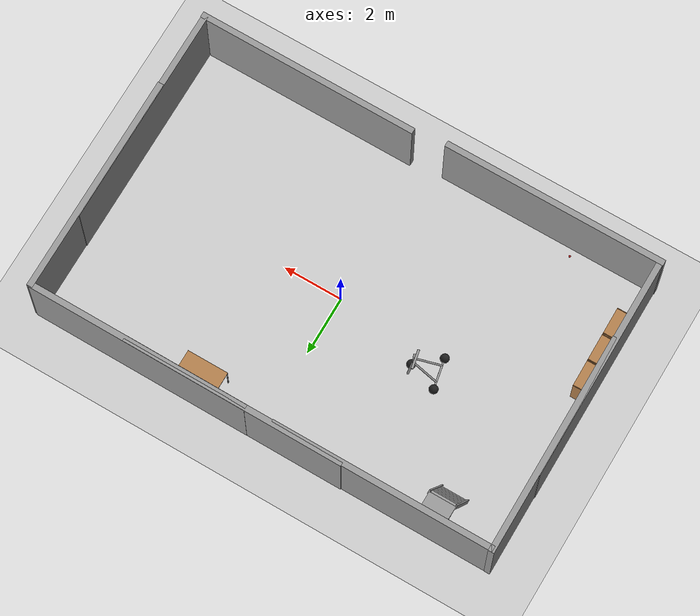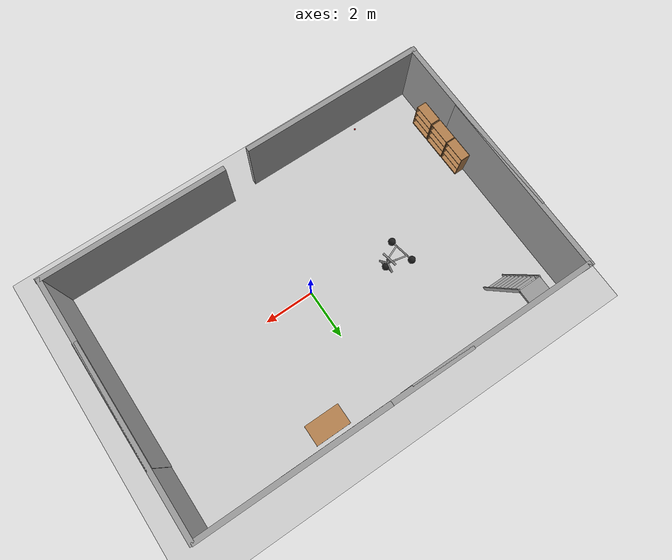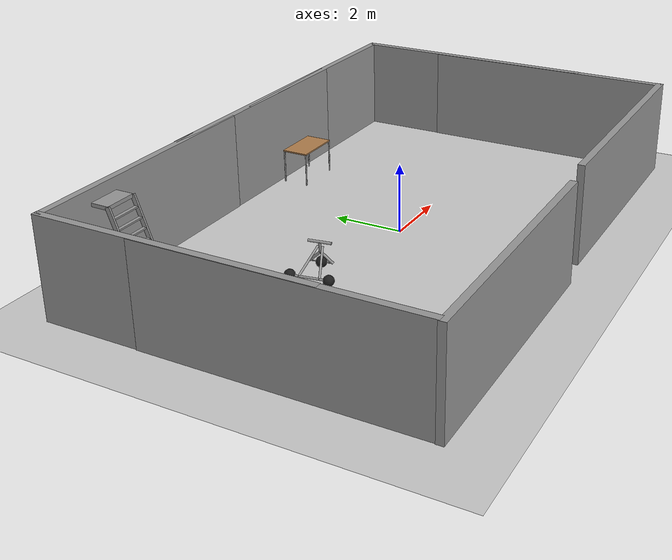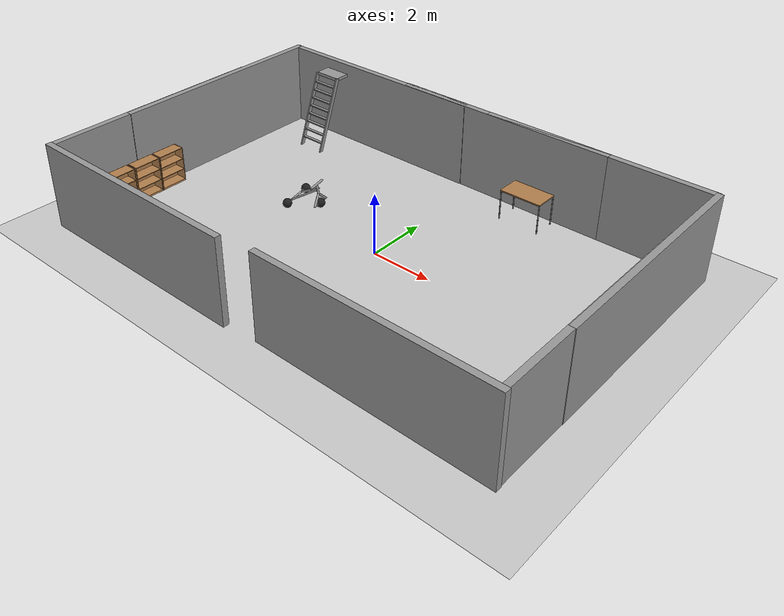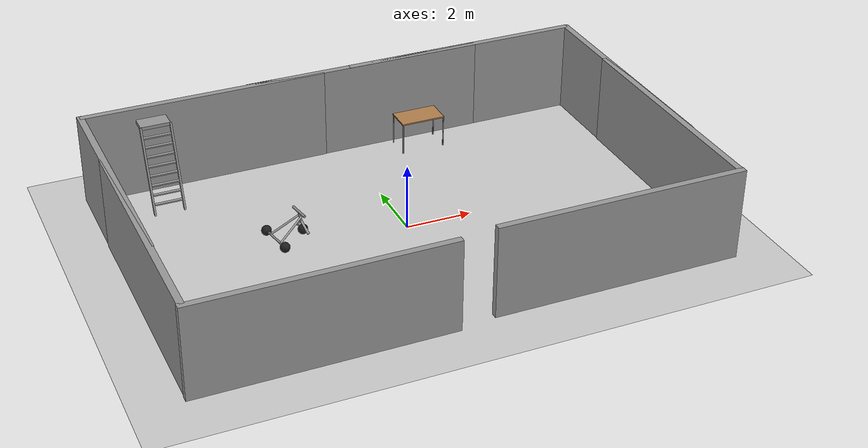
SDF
<sdf version="1.6">
 <world name="default">
  <light name="sun" type="directional">
   <pose>0 0 10 0 -0 0</pose>
   <diffuse>0.8 0.8 0.8 1</diffuse>
   <specular>0.1 0.1 0.1 1</specular>
   <attenuation>
    <range>1000</range>
    <constant>0.9</constant>
    <linear>0.01</linear>
    <quadratic>0.001</quadratic>
   </attenuation>
   <direction>-0.5 0.5 -1</direction>
  </light>
  <model name="ground_plane">
   <static>1</static>
   <link name="link">
    <collision name="collision">
     <geometry><plane><normal>0 0 1</normal><size>100 100</size></plane></geometry>
     <surface><friction><ode><mu>100</mu><mu2>50</mu2></ode></friction></surface>
    </collision>
    <visual name="visual">
     <cast_shadows>0</cast_shadows>
     <geometry><plane><normal>0 0 1</normal><size>100 100</size></plane></geometry>
     <material>
      <script><uri>file://media/materials/scripts/gazebo.material</uri><name>Gazebo/Grey</name></script>
     </material>
    </visual>
   </link>
  </model>
  <gravity>0 0 -9.8</gravity>
  <magnetic_field>6e-06 2.3e-05 -4.2e-05</magnetic_field>
  <atmosphere type="adiabatic"/>
  <physics name="default_physics" default="0" type="ode">
   <max_step_size>0.001</max_step_size>
   <real_time_factor>1</real_time_factor>
   <real_time_update_rate>1000</real_time_update_rate>
  </physics>
  <scene><ambient>0.4 0.4 0.4 1</ambient><background>0.7 0.7 0.7 1</background><shadows>1</shadows></scene>
  <spherical_coordinates>
   <surface_model>EARTH_WGS84</surface_model>
   <latitude_deg>0</latitude_deg>
   <longitude_deg>0</longitude_deg>
   <elevation>0</elevation>
   <heading_deg>0</heading_deg>
  </spherical_coordinates>
  <model name="bookshelf">
   <static>1</static>
   <link name="link">
    <inertial><mass>1</mass></inertial>
    <collision name="back">
     <pose>0 0.005 0.6 0 -0 0</pose>
     <geometry><box><size>0.9 0.01 1.2</size></box></geometry>
    </collision>
    <visual name="visual1">
     <pose>0 0.005 0.6 0 -0 0</pose>
     <geometry><box><size>0.9 0.01 1.2</size></box></geometry>
     <material>
      <script><uri>file://media/materials/scripts/gazebo.material</uri><name>Gazebo/Wood</name></script>
     </material>
    </visual>
    <collision name="left_side">
     <pose>0.45 -0.195 0.6 0 -0 0</pose>
     <geometry><box><size>0.02 0.4 1.2</size></box></geometry>
    </collision>
    <visual name="visual2">
     <pose>0.45 -0.195 0.6 0 -0 0</pose>
     <geometry><box><size>0.02 0.4 1.2</size></box></geometry>
     <material>
      <script><uri>file://media/materials/scripts/gazebo.material</uri><name>Gazebo/Wood</name></script>
     </material>
    </visual>
    <collision name="right_side">
     <pose>-0.45 -0.195 0.6 0 -0 0</pose>
     <geometry><box><size>0.02 0.4 1.2</size></box></geometry>
    </collision>
    <visual name="visual3">
     <pose>-0.45 -0.195 0.6 0 -0 0</pose>
     <geometry><box><size>0.02 0.4 1.2</size></box></geometry>
     <material>
      <script><uri>file://media/materials/scripts/gazebo.material</uri><name>Gazebo/Wood</name></script>
     </material>
    </visual>
    <collision name="bottom">
     <pose>0 -0.195 0.03 0 -0 0</pose>
     <geometry><box><size>0.88 0.4 0.06</size></box></geometry>
    </collision>
    <visual name="visual4">
     <pose>0 -0.195 0.03 0 -0 0</pose>
     <geometry><box><size>0.88 0.4 0.06</size></box></geometry>
     <material>
      <script><uri>file://media/materials/scripts/gazebo.material</uri><name>Gazebo/Wood</name></script>
     </material>
    </visual>
    <collision name="top">
     <pose>0 -0.195 1.19 0 -0 0</pose>
     <geometry><box><size>0.88 0.4 0.02</size></box></geometry>
    </collision>
    <visual name="visual5">
     <pose>0 -0.195 1.19 0 -0 0</pose>
     <geometry><box><size>0.88 0.4 0.02</size></box></geometry>
     <material>
      <script><uri>file://media/materials/scripts/gazebo.material</uri><name>Gazebo/Wood</name></script>
     </material>
    </visual>
    <collision name="low_shelf">
     <pose>0 -0.195 0.43 0 -0 0</pose>
     <geometry><box><size>0.88 0.4 0.02</size></box></geometry>
    </collision>
    <visual name="visual6">
     <pose>0 -0.195 0.43 0 -0 0</pose>
     <geometry><box><size>0.88 0.4 0.02</size></box></geometry>
     <material>
      <script><uri>file://media/materials/scripts/gazebo.material</uri><name>Gazebo/Wood</name></script>
     </material>
    </visual>
    <collision name="high_shelf">
     <pose>0 -0.195 0.8 0 -0 0</pose>
     <geometry><box><size>0.88 0.4 0.02</size></box></geometry>
    </collision>
    <visual name="visual7">
     <pose>0 -0.195 0.8 0 -0 0</pose>
     <geometry><box><size>0.88 0.4 0.02</size></box></geometry>
     <material>
      <script><uri>file://media/materials/scripts/gazebo.material</uri><name>Gazebo/Wood</name></script>
     </material>
    </visual>
   </link>
   <pose>-7.93454 -3.22473 0 0 -0 1.57949</pose>
  </model>
  <model name="cricket_ball">
   <link name="link">
    <pose>0 0 0.0375 0 -0 0</pose>
    <inertial>
     <mass>0.1467</mass>
     <inertia>
      <ixx>8.25187e-05</ixx>
      <ixy>0</ixy>
      <ixz>0</ixz>
      <iyy>8.25187e-05</iyy>
      <iyz>0</iyz>
      <izz>8.25187e-05</izz>
     </inertia>
    </inertial>
    <collision name="collision">
     <geometry><sphere><radius>0.0375</radius></sphere></geometry>
     <surface>
      <contact>
       <poissons_ratio>0.347</poissons_ratio>
       <elastic_modulus>8.8e+09</elastic_modulus>
       <ode><kp>100000</kp><kd>100</kd><max_vel>100</max_vel><min_depth>0.001</min_depth></ode>
      </contact>
      <friction>
       <torsional>
        <coefficient>1</coefficient>
        <use_patch_radius>0</use_patch_radius>
        <surface_radius>0.01</surface_radius>
       </torsional>
      </friction>
     </surface>
    </collision>
    <visual name="visual">
     <geometry><sphere><radius>0.0375</radius></sphere></geometry>
     <material>
      <script><uri>file://media/materials/scripts/gazebo.material</uri><name>Gazebo/Red</name></script>
     </material>
    </visual>
    <velocity_decay><linear>0</linear><angular>0.005</angular></velocity_decay>
   </link>
   <pose>-5.37474 -4.75945 -0.001014 0 -0 0</pose>
  </model>
  <model name="grey_wall">
   <static>1</static>
   <link name="link">
    <pose>0 0 1.4 0 -0 0</pose>
    <collision name="collision"><geometry><box><size>7.5 0.2 2.8</size></box></geometry></collision>
    <visual name="visual">
     <cast_shadows>0</cast_shadows>
     <geometry><box><size>7.5 0.2 2.8</size></box></geometry>
     <material>
      <script>
       <uri>model://grey_wall/materials/scripts</uri>
       <uri>model://grey_wall/materials/textures</uri>
       <name>vrc/grey_wall</name>
      </script>
     </material>
    </visual>
   </link>
   <pose>-4.36059 5.04351 0 0 -0 0</pose>
  </model>
  <model name="table">
   <static>0</static>
   <link name="link">
    <collision name="surface">
     <pose>0 0 1 0 -0 0</pose>
     <geometry><box><size>1.5 0.8 0.03</size></box></geometry>
     <surface><friction><ode><mu>0.6</mu><mu2>0.6</mu2></ode></friction></surface>
    </collision>
    <visual name="visual1">
     <pose>0 0 1 0 -0 0</pose>
     <geometry><box><size>1.4 0.8 0.04</size></box></geometry>
     <material>
      <script><uri>file://media/materials/scripts/gazebo.material</uri><name>Gazebo/Wood</name></script>
     </material>
    </visual>
    <collision name="front_left_leg">
     <pose>0.68 0.38 0.5 0 -0 0</pose>
     <geometry><cylinder><radius>0.02</radius><length>1</length></cylinder></geometry>
    </collision>
    <visual name="front_left_leg">
     <pose>0.68 0.38 0.5 0 -0 0</pose>
     <geometry><cylinder><radius>0.02</radius><length>1</length></cylinder></geometry>
     <material>
      <script><uri>file://media/materials/scripts/gazebo.material</uri><name>Gazebo/Grey</name></script>
     </material>
    </visual>
    <collision name="front_right_leg">
     <pose>0.68 -0.38 0.5 0 -0 0</pose>
     <geometry><cylinder><radius>0.02</radius><length>1</length></cylinder></geometry>
    </collision>
    <visual name="front_right_leg">
     <pose>0.68 -0.38 0.5 0 -0 0</pose>
     <geometry><cylinder><radius>0.02</radius><length>1</length></cylinder></geometry>
     <material>
      <script><uri>file://media/materials/scripts/gazebo.material</uri><name>Gazebo/Grey</name></script>
     </material>
    </visual>
    <collision name="back_right_leg">
     <pose>-0.68 -0.38 0.5 0 -0 0</pose>
     <geometry><cylinder><radius>0.02</radius><length>1</length></cylinder></geometry>
    </collision>
    <visual name="back_right_leg">
     <pose>-0.68 -0.38 0.5 0 -0 0</pose>
     <geometry><cylinder><radius>0.02</radius><length>1</length></cylinder></geometry>
     <material>
      <script><uri>file://media/materials/scripts/gazebo.material</uri><name>Gazebo/Grey</name></script>
     </material>
    </visual>
    <collision name="back_left_leg">
     <pose>-0.68 0.38 0.5 0 -0 0</pose>
     <geometry><cylinder><radius>0.02</radius><length>1</length></cylinder></geometry>
    </collision>
    <visual name="back_left_leg">
     <pose>-0.68 0.38 0.5 0 -0 0</pose>
     <geometry><cylinder><radius>0.02</radius><length>1</length></cylinder></geometry>
     <material>
      <script><uri>file://media/materials/scripts/gazebo.material</uri><name>Gazebo/Grey</name></script>
     </material>
    </visual>
    <inertial>
     <inertia><ixx>1</ixx><ixy>0</ixy><ixz>0</ixz><iyy>1</iyy><iyz>0</iyz><izz>1</izz></inertia>
     <mass>1</mass>
    </inertial>
   </link>
   <pose>2.27743 4.40505 -9e-06 0 -0 0</pose>
  </model>
  <model name="trisphere_cycle">
   <link name="frame">
    <pose>-0.408559 0 0.385023 0 -0.522021 0</pose>
    <inertial>
     <mass>10</mass>
     <inertia><ixx>0.228</ixx><iyy>0.743521</iyy><izz>0.965521</izz><ixy>0</ixy><ixz>0</ixz><iyz>0</iyz></inertia>
    </inertial>
    <collision name="axle_collision">
     <pose>-0.471335 0 0 1.5708 -0 0</pose>
     <geometry><cylinder><length>1.03923</length><radius>0.03</radius></cylinder></geometry>
    </collision>
    <visual name="axle_visual">
     <pose>-0.471335 0 0 1.5708 -0 0</pose>
     <geometry><cylinder><length>1.03923</length><radius>0.03</radius></cylinder></geometry>
     <material>
      <script><uri>file://media/materials/scripts/gazebo.material</uri><name>Gazebo/Grey</name></script>
     </material>
    </visual>
    <collision name="frame_left_collision">
     <pose>0 0.171552 0 2.986 1.57079 2.76675</pose>
     <geometry><cylinder><length>1.00317</length><radius>0.03</radius></cylinder></geometry>
    </collision>
    <visual name="frame_left_visual">
     <pose>0 0.171552 0 2.986 1.57079 2.76675</pose>
     <geometry><cylinder><length>1.00317</length><radius>0.03</radius></cylinder></geometry>
     <material>
      <script><uri>file://media/materials/scripts/gazebo.material</uri><name>Gazebo/Grey</name></script>
     </material>
    </visual>
    <collision name="frame_right_collision">
     <pose>0 -0.171552 0 -2.986 1.57079 -2.76675</pose>
     <geometry><cylinder><length>1.00317</length><radius>0.03</radius></cylinder></geometry>
    </collision>
    <visual name="frame_right_visual">
     <pose>0 -0.171552 0 -2.986 1.57079 -2.76675</pose>
     <geometry><cylinder><length>1.00317</length><radius>0.03</radius></cylinder></geometry>
     <material>
      <script><uri>file://media/materials/scripts/gazebo.material</uri><name>Gazebo/Grey</name></script>
     </material>
    </visual>
   </link>
   <link name="fork">
    <pose>0.041441 0 0.385023 0 -0.174533 0</pose>
    <inertial>
     <mass>3</mass>
     <inertia>
      <ixx>0.158203</ixx>
      <iyy>0.0583594</iyy>
      <izz>0.102656</izz>
      <ixy>0</ixy>
      <ixz>0</ixz>
      <iyz>0</iyz>
     </inertia>
    </inertial>
    <collision name="handlebars_collision">
     <pose>0 0 0.397748 1.5708 -0 0</pose>
     <geometry><cylinder><length>0.636396</length><radius>0.0375</radius></cylinder></geometry>
    </collision>
    <visual name="handlebars_visual">
     <pose>0 0 0.397748 1.5708 -0 0</pose>
     <geometry><cylinder><length>0.636396</length><radius>0.0375</radius></cylinder></geometry>
     <material>
      <script><uri>file://media/materials/scripts/gazebo.material</uri><name>Gazebo/Grey</name></script>
     </material>
    </visual>
    <collision name="headtube_collision">
     <pose>0 0 0.238649 0 -0 0</pose>
     <geometry><cylinder><length>0.318198</length><radius>0.0375</radius></cylinder></geometry>
    </collision>
    <visual name="headtube_visual">
     <pose>0 0 0.238649 0 -0 0</pose>
     <geometry><cylinder><length>0.318198</length><radius>0.0375</radius></cylinder></geometry>
     <material>
      <script><uri>file://media/materials/scripts/gazebo.material</uri><name>Gazebo/Grey</name></script>
     </material>
    </visual>
    <collision name="spindle_collision">
     <pose>0 0 -0.238649 1.5708 -0 0</pose>
     <geometry><cylinder><length>0.636396</length><radius>0.015</radius></cylinder></geometry>
    </collision>
    <visual name="spindle_visual">
     <pose>0 0 -0.238649 1.5708 -0 0</pose>
     <geometry><cylinder><length>0.636396</length><radius>0.015</radius></cylinder></geometry>
     <material>
      <script><uri>file://media/materials/scripts/gazebo.material</uri><name>Gazebo/Grey</name></script>
     </material>
    </visual>
    <collision name="fork_left_collision">
     <pose>0 0.159099 -0.07955 0.785398 -0 0</pose>
     <geometry><cylinder><length>0.45</length><radius>0.0375</radius></cylinder></geometry>
    </collision>
    <visual name="fork_left_visual">
     <pose>0 0.159099 -0.07955 0.785398 -0 0</pose>
     <geometry><cylinder><length>0.45</length><radius>0.0375</radius></cylinder></geometry>
     <material>
      <script><uri>file://media/materials/scripts/gazebo.material</uri><name>Gazebo/Grey</name></script>
     </material>
    </visual>
    <collision name="fork_right_collision">
     <pose>0 -0.159099 -0.07955 -0.785398 0 0</pose>
     <geometry><cylinder><length>0.45</length><radius>0.0375</radius></cylinder></geometry>
    </collision>
    <visual name="fork_right_visual">
     <pose>0 -0.159099 -0.07955 -0.785398 0 0</pose>
     <geometry><cylinder><length>0.45</length><radius>0.0375</radius></cylinder></geometry>
     <material>
      <script><uri>file://media/materials/scripts/gazebo.material</uri><name>Gazebo/Grey</name></script>
     </material>
    </visual>
   </link>
   <link name="wheel_front">
    <pose>0.082882 0 0.15 0 -0 0</pose>
    <inertial>
     <mass>0.5</mass>
     <inertia><ixx>0.0045</ixx><iyy>0.0045</iyy><izz>0.0045</izz><ixy>0</ixy><ixz>0</ixz><iyz>0</iyz></inertia>
    </inertial>
    <collision name="collision">
     <geometry><sphere><radius>0.15</radius></sphere></geometry>
     <surface><contact><ode><kp>1e+08</kp><kd>1</kd><min_depth>0.0005</min_depth></ode></contact></surface>
    </collision>
    <visual name="visual">
     <geometry><sphere><radius>0.15</radius></sphere></geometry>
     <material>
      <script><uri>file://media/materials/scripts/gazebo.material</uri><name>Gazebo/Black</name></script>
     </material>
    </visual>
   </link>
   <joint name="wheel_front_steer" type="revolute">
    <parent>frame</parent>
    <child>fork</child>
    <axis>
     <xyz>0 0 1</xyz>
     <limit><lower>-0.959931</lower><upper>0.959931</upper></limit>
     <use_parent_model_frame>0</use_parent_model_frame>
     <dynamics><spring_reference>0</spring_reference><spring_stiffness>0</spring_stiffness></dynamics>
    </axis>
   </joint>
   <joint name="wheel_front_spin" type="revolute">
    <parent>fork</parent>
    <child>wheel_front</child>
    <axis>
     <xyz>0 1 0</xyz>
     <use_parent_model_frame>0</use_parent_model_frame>
     <limit><lower>-1e+16</lower><upper>1e+16</upper></limit>
     <dynamics><spring_reference>0</spring_reference><spring_stiffness>0</spring_stiffness></dynamics>
    </axis>
   </joint>
   <link name="wheel_rear_left">
    <pose>-0.817118 0.519615 0.15 0 -0 0</pose>
    <inertial>
     <mass>0.5</mass>
     <inertia><ixx>0.0045</ixx><iyy>0.0045</iyy><izz>0.0045</izz><ixy>0</ixy><ixz>0</ixz><iyz>0</iyz></inertia>
    </inertial>
    <collision name="collision">
     <geometry><sphere><radius>0.15</radius></sphere></geometry>
     <surface><contact><ode><kp>1e+08</kp><kd>1</kd><min_depth>0.0005</min_depth></ode></contact></surface>
    </collision>
    <visual name="visual">
     <geometry><sphere><radius>0.15</radius></sphere></geometry>
     <material>
      <script><uri>file://media/materials/scripts/gazebo.material</uri><name>Gazebo/Black</name></script>
     </material>
    </visual>
   </link>
   <joint name="wheel_rear_left_spin" type="revolute">
    <parent>frame</parent>
    <child>wheel_rear_left</child>
    <axis>
     <xyz>0 1 0</xyz>
     <use_parent_model_frame>0</use_parent_model_frame>
     <limit><lower>-1e+16</lower><upper>1e+16</upper></limit>
     <dynamics><spring_reference>0</spring_reference><spring_stiffness>0</spring_stiffness></dynamics>
    </axis>
   </joint>
   <link name="wheel_rear_right">
    <pose>-0.817118 -0.519615 0.15 0 -0 0</pose>
    <inertial>
     <mass>0.5</mass>
     <inertia><ixx>0.0045</ixx><iyy>0.0045</iyy><izz>0.0045</izz><ixy>0</ixy><ixz>0</ixz><iyz>0</iyz></inertia>
    </inertial>
    <collision name="collision">
     <geometry><sphere><radius>0.15</radius></sphere></geometry>
     <surface><contact><ode><kp>1e+08</kp><kd>1</kd><min_depth>0.0005</min_depth></ode></contact></surface>
    </collision>
    <visual name="visual">
     <geometry><sphere><radius>0.15</radius></sphere></geometry>
     <material>
      <script><uri>file://media/materials/scripts/gazebo.material</uri><name>Gazebo/Black</name></script>
     </material>
    </visual>
   </link>
   <joint name="wheel_rear_right_spin" type="revolute">
    <parent>frame</parent>
    <child>wheel_rear_right</child>
    <axis>
     <xyz>0 1 0</xyz>
     <use_parent_model_frame>0</use_parent_model_frame>
     <limit><lower>-1e+16</lower><upper>1e+16</upper></limit>
     <dynamics><spring_reference>0</spring_reference><spring_stiffness>0</spring_stiffness></dynamics>
    </axis>
   </joint>
   <pose>-3.00856 0.74938 0.079591 0.019416 -0.009572 0.191768</pose>
  </model>
  <model name="grey_wall_clone">
   <static>1</static>
   <link name="link">
    <pose>0 0 1.4 0 -0 0</pose>
    <collision name="collision"><geometry><box><size>7.5 0.2 2.8</size></box></geometry></collision>
    <visual name="visual">
     <cast_shadows>0</cast_shadows>
     <geometry><box><size>7.5 0.2 2.8</size></box></geometry>
     <material>
      <script>
       <uri>model://grey_wall/materials/scripts</uri>
       <uri>model://grey_wall/materials/textures</uri>
       <name>vrc/grey_wall</name>
      </script>
     </material>
    </visual>
   </link>
   <pose>7.74075 1.36331 0 0 0 -1.56783</pose>
  </model>
  <model name="grey_wall_clone_clone">
   <static>1</static>
   <link name="link">
    <pose>0 0 1.4 0 -0 0</pose>
    <collision name="collision"><geometry><box><size>7.5 0.2 2.8</size></box></geometry></collision>
    <visual name="visual">
     <cast_shadows>0</cast_shadows>
     <geometry><box><size>7.5 0.2 2.8</size></box></geometry>
     <material>
      <script>
       <uri>model://grey_wall/materials/scripts</uri>
       <uri>model://grey_wall/materials/textures</uri>
       <name>vrc/grey_wall</name>
      </script>
     </material>
    </visual>
   </link>
   <pose>4.00487 5.05079 0 0 0 -0.002782</pose>
  </model>
  <model name="grey_wall_clone_clone_0">
   <static>1</static>
   <link name="link">
    <pose>0 0 1.4 0 -0 0</pose>
    <collision name="collision"><geometry><box><size>7.5 0.2 2.8</size></box></geometry></collision>
    <visual name="visual">
     <cast_shadows>0</cast_shadows>
     <geometry><box><size>7.5 0.2 2.8</size></box></geometry>
     <material>
      <script>
       <uri>model://grey_wall/materials/scripts</uri>
       <uri>model://grey_wall/materials/textures</uri>
       <name>vrc/grey_wall</name>
      </script>
     </material>
    </visual>
   </link>
   <pose>7.73018 -1.26308 0 0 0 -1.56783</pose>
  </model>
  <model name="grey_wall_clone_clone_clone">
   <static>1</static>
   <link name="link">
    <pose>0 0 1.4 0 -0 0</pose>
    <collision name="collision"><geometry><box><size>7.5 0.2 2.8</size></box></geometry></collision>
    <visual name="visual">
     <cast_shadows>0</cast_shadows>
     <geometry><box><size>7.5 0.2 2.8</size></box></geometry>
     <material>
      <script>
       <uri>model://grey_wall/materials/scripts</uri>
       <uri>model://grey_wall/materials/textures</uri>
       <name>vrc/grey_wall</name>
      </script>
     </material>
    </visual>
   </link>
   <pose>4.10879 -4.94745 0 0 0 -0.002782</pose>
  </model>
  <model name="grey_wall_clone_0">
   <static>1</static>
   <link name="link">
    <pose>0 0 1.4 0 -0 0</pose>
    <collision name="collision"><geometry><box><size>7.5 0.2 2.8</size></box></geometry></collision>
    <visual name="visual">
     <cast_shadows>0</cast_shadows>
     <geometry><box><size>7.5 0.2 2.8</size></box></geometry>
     <material>
      <script>
       <uri>model://grey_wall/materials/scripts</uri>
       <uri>model://grey_wall/materials/textures</uri>
       <name>vrc/grey_wall</name>
      </script>
     </material>
    </visual>
   </link>
   <pose>-4.439 -5.10282 0 0 -0 0</pose>
  </model>
  <model name="grey_wall_clone_clone_1">
   <static>1</static>
   <link name="link">
    <pose>0 0 1.4 0 -0 0</pose>
    <collision name="collision"><geometry><box><size>7.5 0.2 2.8</size></box></geometry></collision>
    <visual name="visual">
     <cast_shadows>0</cast_shadows>
     <geometry><box><size>7.5 0.2 2.8</size></box></geometry>
     <material>
      <script>
       <uri>model://grey_wall/materials/scripts</uri>
       <uri>model://grey_wall/materials/textures</uri>
       <name>vrc/grey_wall</name>
      </script>
     </material>
    </visual>
   </link>
   <pose>-8.07106 1.40173 0 0 0 -1.56783</pose>
  </model>
  <model name="grey_wall_clone_clone_0_clone">
   <static>1</static>
   <link name="link">
    <pose>0 0 1.4 0 -0 0</pose>
    <collision name="collision"><geometry><box><size>7.5 0.2 2.8</size></box></geometry></collision>
    <visual name="visual">
     <cast_shadows>0</cast_shadows>
     <geometry><box><size>7.5 0.2 2.8</size></box></geometry>
     <material>
      <script>
       <uri>model://grey_wall/materials/scripts</uri>
       <uri>model://grey_wall/materials/textures</uri>
       <name>vrc/grey_wall</name>
      </script>
     </material>
    </visual>
   </link>
   <pose>-8.08225 -1.29953 0 0 0 -1.56783</pose>
  </model>
  <model name="grey_wall_clone_clone_clone_0">
   <static>1</static>
   <link name="link">
    <pose>0 0 1.4 0 -0 0</pose>
    <collision name="collision"><geometry><box><size>7.5 0.2 2.8</size></box></geometry></collision>
    <visual name="visual">
     <cast_shadows>0</cast_shadows>
     <geometry><box><size>7.5 0.2 2.8</size></box></geometry>
     <material>
      <script>
       <uri>model://grey_wall/materials/scripts</uri>
       <uri>model://grey_wall/materials/textures</uri>
       <name>vrc/grey_wall</name>
      </script>
     </material>
    </visual>
   </link>
   <pose>0.704734 5.0564 0 0 0 -0.002782</pose>
  </model>
  <model name="ladder_70deg_0rails">
   <static>1</static>
   <link name="step0">
    <pose>0 0.097059 0.266667 0 -0 0</pose>
    <inertial>
     <mass>9.75482</mass>
     <inertia>
      <ixx>0.00957124</ixx>
      <iyy>0.65963</iyy>
      <izz>0.666842</izz>
      <ixy>0</ixy>
      <ixz>0</ixz>
      <iyz>0</iyz>
     </inertia>
    </inertial>
    <collision name="collision"><geometry><box><size>0.9 0.1016 0.0381</size></box></geometry></collision>
    <visual name="visual">
     <geometry><box><size>0.9 0.1016 0.0381</size></box></geometry>
     <material>
      <script><uri>file://media/materials/scripts/gazebo.material</uri><name>Gazebo/Grey</name></script>
     </material>
    </visual>
   </link>
   <link name="step1">
    <pose>0 0.194117 0.533333 0 -0 0</pose>
    <inertial>
     <mass>9.75482</mass>
     <inertia>
      <ixx>0.00957124</ixx>
      <iyy>0.65963</iyy>
      <izz>0.666842</izz>
      <ixy>0</ixy>
      <ixz>0</ixz>
      <iyz>0</iyz>
     </inertia>
    </inertial>
    <collision name="collision"><geometry><box><size>0.9 0.1016 0.0381</size></box></geometry></collision>
    <visual name="visual">
     <geometry><box><size>0.9 0.1016 0.0381</size></box></geometry>
     <material>
      <script><uri>file://media/materials/scripts/gazebo.material</uri><name>Gazebo/Grey</name></script>
     </material>
    </visual>
   </link>
   <link name="step2">
    <pose>0 0.291176 0.8 0 -0 0</pose>
    <inertial>
     <mass>9.75482</mass>
     <inertia>
      <ixx>0.00957124</ixx>
      <iyy>0.65963</iyy>
      <izz>0.666842</izz>
      <ixy>0</ixy>
      <ixz>0</ixz>
      <iyz>0</iyz>
     </inertia>
    </inertial>
    <collision name="collision"><geometry><box><size>0.9 0.1016 0.0381</size></box></geometry></collision>
    <visual name="visual">
     <geometry><box><size>0.9 0.1016 0.0381</size></box></geometry>
     <material>
      <script><uri>file://media/materials/scripts/gazebo.material</uri><name>Gazebo/Grey</name></script>
     </material>
    </visual>
   </link>
   <link name="step3">
    <pose>0 0.388235 1.06667 0 -0 0</pose>
    <inertial>
     <mass>9.75482</mass>
     <inertia>
      <ixx>0.00957124</ixx>
      <iyy>0.65963</iyy>
      <izz>0.666842</izz>
      <ixy>0</ixy>
      <ixz>0</ixz>
      <iyz>0</iyz>
     </inertia>
    </inertial>
    <collision name="collision"><geometry><box><size>0.9 0.1016 0.0381</size></box></geometry></collision>
    <visual name="visual">
     <geometry><box><size>0.9 0.1016 0.0381</size></box></geometry>
     <material>
      <script><uri>file://media/materials/scripts/gazebo.material</uri><name>Gazebo/Grey</name></script>
     </material>
    </visual>
   </link>
   <link name="step4">
    <pose>0 0.485294 1.33333 0 -0 0</pose>
    <inertial>
     <mass>9.75482</mass>
     <inertia>
      <ixx>0.00957124</ixx>
      <iyy>0.65963</iyy>
      <izz>0.666842</izz>
      <ixy>0</ixy>
      <ixz>0</ixz>
      <iyz>0</iyz>
     </inertia>
    </inertial>
    <collision name="collision"><geometry><box><size>0.9 0.1016 0.0381</size></box></geometry></collision>
    <visual name="visual">
     <geometry><box><size>0.9 0.1016 0.0381</size></box></geometry>
     <material>
      <script><uri>file://media/materials/scripts/gazebo.material</uri><name>Gazebo/Grey</name></script>
     </material>
    </visual>
   </link>
   <link name="step5">
    <pose>0 0.582352 1.6 0 -0 0</pose>
    <inertial>
     <mass>9.75482</mass>
     <inertia>
      <ixx>0.00957124</ixx>
      <iyy>0.65963</iyy>
      <izz>0.666842</izz>
      <ixy>0</ixy>
      <ixz>0</ixz>
      <iyz>0</iyz>
     </inertia>
    </inertial>
    <collision name="collision"><geometry><box><size>0.9 0.1016 0.0381</size></box></geometry></collision>
    <visual name="visual">
     <geometry><box><size>0.9 0.1016 0.0381</size></box></geometry>
     <material>
      <script><uri>file://media/materials/scripts/gazebo.material</uri><name>Gazebo/Grey</name></script>
     </material>
    </visual>
   </link>
   <link name="step6">
    <pose>0 0.679411 1.86667 0 -0 0</pose>
    <inertial>
     <mass>9.75482</mass>
     <inertia>
      <ixx>0.00957124</ixx>
      <iyy>0.65963</iyy>
      <izz>0.666842</izz>
      <ixy>0</ixy>
      <ixz>0</ixz>
      <iyz>0</iyz>
     </inertia>
    </inertial>
    <collision name="collision"><geometry><box><size>0.9 0.1016 0.0381</size></box></geometry></collision>
    <visual name="visual">
     <geometry><box><size>0.9 0.1016 0.0381</size></box></geometry>
     <material>
      <script><uri>file://media/materials/scripts/gazebo.material</uri><name>Gazebo/Grey</name></script>
     </material>
    </visual>
   </link>
   <link name="step7">
    <pose>0 0.77647 2.13333 0 -0 0</pose>
    <inertial>
     <mass>9.75482</mass>
     <inertia>
      <ixx>0.00957124</ixx>
      <iyy>0.65963</iyy>
      <izz>0.666842</izz>
      <ixy>0</ixy>
      <ixz>0</ixz>
      <iyz>0</iyz>
     </inertia>
    </inertial>
    <collision name="collision"><geometry><box><size>0.9 0.1016 0.0381</size></box></geometry></collision>
    <visual name="visual">
     <geometry><box><size>0.9 0.1016 0.0381</size></box></geometry>
     <material>
      <script><uri>file://media/materials/scripts/gazebo.material</uri><name>Gazebo/Grey</name></script>
     </material>
    </visual>
   </link>
   <link name="landing">
    <pose>0 1.17353 2.4 0 -0 0</pose>
    <inertial>
     <mass>57.6072</mass>
     <inertia><ixx>1.73518</ixx><iyy>3.89545</iyy><izz>5.6167</izz><ixy>0</ixy><ixz>0</ixz><iyz>0</iyz></inertia>
    </inertial>
    <collision name="collision"><geometry><box><size>0.9 0.6 0.1016</size></box></geometry></collision>
    <visual name="visual">
     <geometry><box><size>0.9 0.6 0.1016</size></box></geometry>
     <material>
      <script><uri>file://media/materials/scripts/gazebo.material</uri><name>Gazebo/Grey</name></script>
     </material>
    </visual>
   </link>
   <link name="left_side_wall">
    <pose>-0.45 0.436764 1.2 1.22173 -0 0</pose>
    <collision name="collision"><geometry><box><size>0.0508 2.63403 0.13</size></box></geometry></collision>
    <visual name="visual">
     <geometry><box><size>0.0508 2.63403 0.13</size></box></geometry>
     <material>
      <script><uri>file://media/materials/scripts/gazebo.material</uri><name>Gazebo/Grey</name></script>
     </material>
    </visual>
   </link>
   <link name="right_side_wall">
    <pose>0.45 0.436764 1.2 1.22173 -0 0</pose>
    <collision name="collision"><geometry><box><size>0.0508 2.63403 0.13</size></box></geometry></collision>
    <visual name="visual">
     <geometry><box><size>0.0508 2.63403 0.13</size></box></geometry>
     <material>
      <script><uri>file://media/materials/scripts/gazebo.material</uri><name>Gazebo/Grey</name></script>
     </material>
    </visual>
   </link>
   <pose>-6.06223 3.55152 0 0 -0 0</pose>
  </model>
  <model name="bookshelf_clone">
   <static>1</static>
   <link name="link">
    <inertial><mass>1</mass></inertial>
    <collision name="back">
     <pose>0 0.005 0.6 0 -0 0</pose>
     <geometry><box><size>0.9 0.01 1.2</size></box></geometry>
    </collision>
    <visual name="visual1">
     <pose>0 0.005 0.6 0 -0 0</pose>
     <geometry><box><size>0.9 0.01 1.2</size></box></geometry>
     <material>
      <script><uri>file://media/materials/scripts/gazebo.material</uri><name>Gazebo/Wood</name></script>
     </material>
    </visual>
    <collision name="left_side">
     <pose>0.45 -0.195 0.6 0 -0 0</pose>
     <geometry><box><size>0.02 0.4 1.2</size></box></geometry>
    </collision>
    <visual name="visual2">
     <pose>0.45 -0.195 0.6 0 -0 0</pose>
     <geometry><box><size>0.02 0.4 1.2</size></box></geometry>
     <material>
      <script><uri>file://media/materials/scripts/gazebo.material</uri><name>Gazebo/Wood</name></script>
     </material>
    </visual>
    <collision name="right_side">
     <pose>-0.45 -0.195 0.6 0 -0 0</pose>
     <geometry><box><size>0.02 0.4 1.2</size></box></geometry>
    </collision>
    <visual name="visual3">
     <pose>-0.45 -0.195 0.6 0 -0 0</pose>
     <geometry><box><size>0.02 0.4 1.2</size></box></geometry>
     <material>
      <script><uri>file://media/materials/scripts/gazebo.material</uri><name>Gazebo/Wood</name></script>
     </material>
    </visual>
    <collision name="bottom">
     <pose>0 -0.195 0.03 0 -0 0</pose>
     <geometry><box><size>0.88 0.4 0.06</size></box></geometry>
    </collision>
    <visual name="visual4">
     <pose>0 -0.195 0.03 0 -0 0</pose>
     <geometry><box><size>0.88 0.4 0.06</size></box></geometry>
     <material>
      <script><uri>file://media/materials/scripts/gazebo.material</uri><name>Gazebo/Wood</name></script>
     </material>
    </visual>
    <collision name="top">
     <pose>0 -0.195 1.19 0 -0 0</pose>
     <geometry><box><size>0.88 0.4 0.02</size></box></geometry>
    </collision>
    <visual name="visual5">
     <pose>0 -0.195 1.19 0 -0 0</pose>
     <geometry><box><size>0.88 0.4 0.02</size></box></geometry>
     <material>
      <script><uri>file://media/materials/scripts/gazebo.material</uri><name>Gazebo/Wood</name></script>
     </material>
    </visual>
    <collision name="low_shelf">
     <pose>0 -0.195 0.43 0 -0 0</pose>
     <geometry><box><size>0.88 0.4 0.02</size></box></geometry>
    </collision>
    <visual name="visual6">
     <pose>0 -0.195 0.43 0 -0 0</pose>
     <geometry><box><size>0.88 0.4 0.02</size></box></geometry>
     <material>
      <script><uri>file://media/materials/scripts/gazebo.material</uri><name>Gazebo/Wood</name></script>
     </material>
    </visual>
    <collision name="high_shelf">
     <pose>0 -0.195 0.8 0 -0 0</pose>
     <geometry><box><size>0.88 0.4 0.02</size></box></geometry>
    </collision>
    <visual name="visual7">
     <pose>0 -0.195 0.8 0 -0 0</pose>
     <geometry><box><size>0.88 0.4 0.02</size></box></geometry>
     <material>
      <script><uri>file://media/materials/scripts/gazebo.material</uri><name>Gazebo/Wood</name></script>
     </material>
    </visual>
   </link>
   <pose>-7.94024 -2.27032 0 0 -0 1.57949</pose>
  </model>
  <model name="bookshelf_clone_clone">
   <static>1</static>
   <link name="link">
    <inertial><mass>1</mass></inertial>
    <collision name="back">
     <pose>0 0.005 0.6 0 -0 0</pose>
     <geometry><box><size>0.9 0.01 1.2</size></box></geometry>
    </collision>
    <visual name="visual1">
     <pose>0 0.005 0.6 0 -0 0</pose>
     <geometry><box><size>0.9 0.01 1.2</size></box></geometry>
     <material>
      <script><uri>file://media/materials/scripts/gazebo.material</uri><name>Gazebo/Wood</name></script>
     </material>
    </visual>
    <collision name="left_side">
     <pose>0.45 -0.195 0.6 0 -0 0</pose>
     <geometry><box><size>0.02 0.4 1.2</size></box></geometry>
    </collision>
    <visual name="visual2">
     <pose>0.45 -0.195 0.6 0 -0 0</pose>
     <geometry><box><size>0.02 0.4 1.2</size></box></geometry>
     <material>
      <script><uri>file://media/materials/scripts/gazebo.material</uri><name>Gazebo/Wood</name></script>
     </material>
    </visual>
    <collision name="right_side">
     <pose>-0.45 -0.195 0.6 0 -0 0</pose>
     <geometry><box><size>0.02 0.4 1.2</size></box></geometry>
    </collision>
    <visual name="visual3">
     <pose>-0.45 -0.195 0.6 0 -0 0</pose>
     <geometry><box><size>0.02 0.4 1.2</size></box></geometry>
     <material>
      <script><uri>file://media/materials/scripts/gazebo.material</uri><name>Gazebo/Wood</name></script>
     </material>
    </visual>
    <collision name="bottom">
     <pose>0 -0.195 0.03 0 -0 0</pose>
     <geometry><box><size>0.88 0.4 0.06</size></box></geometry>
    </collision>
    <visual name="visual4">
     <pose>0 -0.195 0.03 0 -0 0</pose>
     <geometry><box><size>0.88 0.4 0.06</size></box></geometry>
     <material>
      <script><uri>file://media/materials/scripts/gazebo.material</uri><name>Gazebo/Wood</name></script>
     </material>
    </visual>
    <collision name="top">
     <pose>0 -0.195 1.19 0 -0 0</pose>
     <geometry><box><size>0.88 0.4 0.02</size></box></geometry>
    </collision>
    <visual name="visual5">
     <pose>0 -0.195 1.19 0 -0 0</pose>
     <geometry><box><size>0.88 0.4 0.02</size></box></geometry>
     <material>
      <script><uri>file://media/materials/scripts/gazebo.material</uri><name>Gazebo/Wood</name></script>
     </material>
    </visual>
    <collision name="low_shelf">
     <pose>0 -0.195 0.43 0 -0 0</pose>
     <geometry><box><size>0.88 0.4 0.02</size></box></geometry>
    </collision>
    <visual name="visual6">
     <pose>0 -0.195 0.43 0 -0 0</pose>
     <geometry><box><size>0.88 0.4 0.02</size></box></geometry>
     <material>
      <script><uri>file://media/materials/scripts/gazebo.material</uri><name>Gazebo/Wood</name></script>
     </material>
    </visual>
    <collision name="high_shelf">
     <pose>0 -0.195 0.8 0 -0 0</pose>
     <geometry><box><size>0.88 0.4 0.02</size></box></geometry>
    </collision>
    <visual name="visual7">
     <pose>0 -0.195 0.8 0 -0 0</pose>
     <geometry><box><size>0.88 0.4 0.02</size></box></geometry>
     <material>
      <script><uri>file://media/materials/scripts/gazebo.material</uri><name>Gazebo/Wood</name></script>
     </material>
    </visual>
   </link>
   <pose>-7.95087 -1.33173 0 0 -0 1.57949</pose>
  </model>
 </world>
</sdf>
